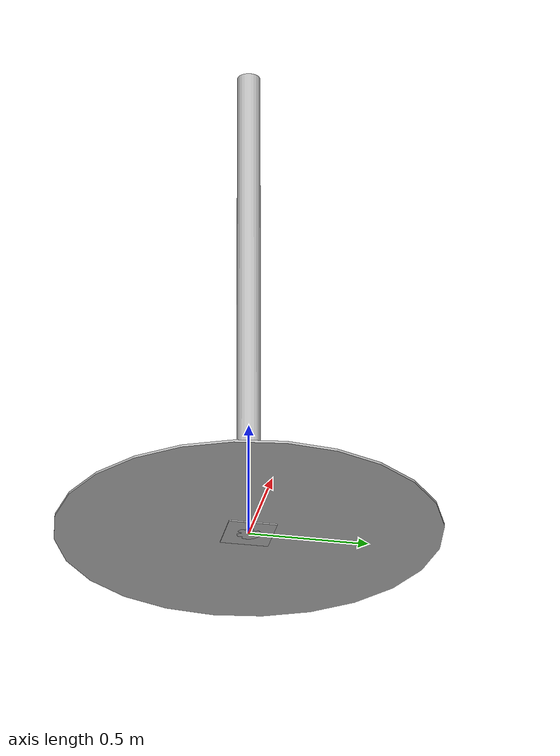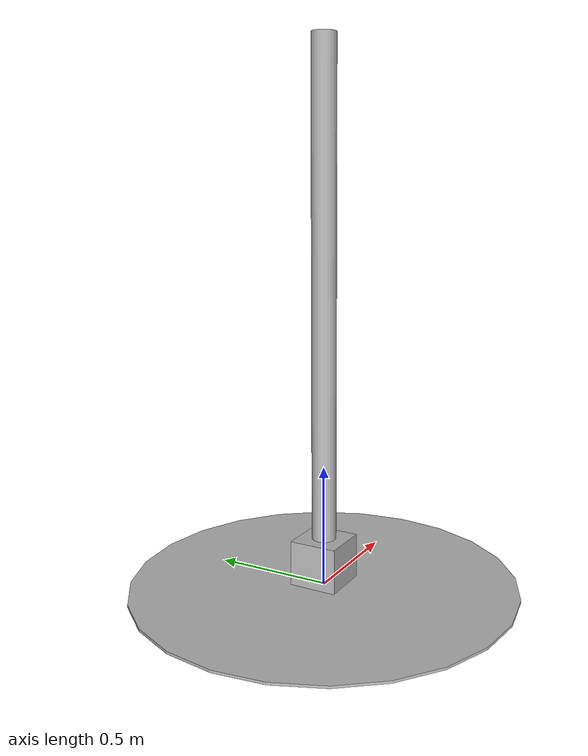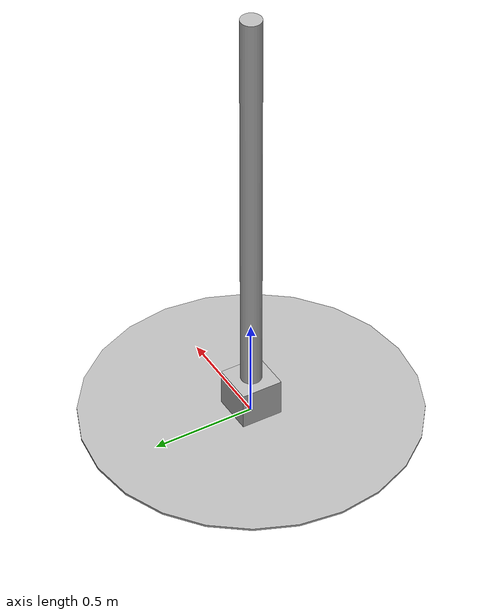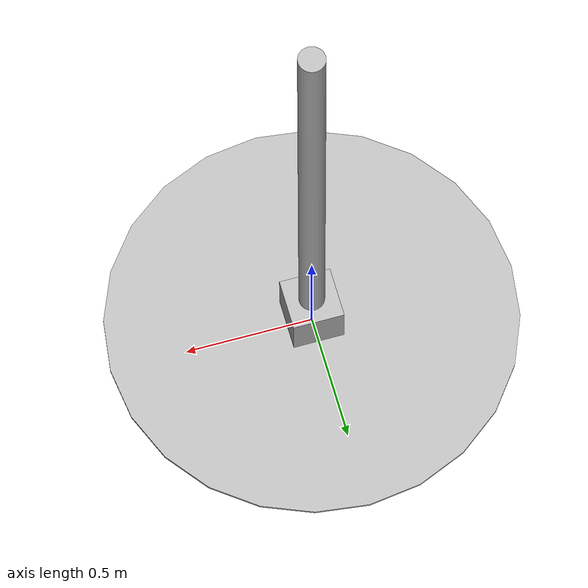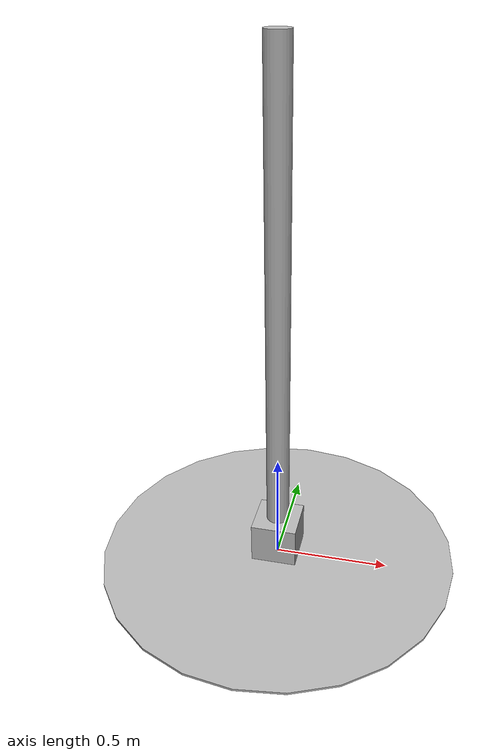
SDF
<?xml version="1.0" ?>
<sdf version="1.5">
  <model name="mass_on_pole">

    <link name="base">
      <inertial>
        <mass>100</mass>
      </inertial>
      <visual name="vis_base">
        <pose>0 0 0.01 0 0 0</pose>
        <geometry>
          <cylinder>
            <radius>0.8</radius>
            <length>0.01</length>
          </cylinder>
        </geometry>
      </visual>
      <collision name="col_base">
        <pose>0 0 0.01 0 0 0</pose>
        <geometry>
          <cylinder>
            <radius>0.8</radius>
            <length>0.01</length>
          </cylinder>
        </geometry>
      </collision>
      <visual name="vis_pole">
        <pose>0 0 1.1 0 0 0</pose>
        <geometry>
          <cylinder>
            <radius>0.05</radius>
            <length>2.2</length>
          </cylinder>
        </geometry>
      </visual>
      <collision name="col_pole">
        <pose>0 0 1.1 0 0 0</pose>
        <geometry>
          <cylinder>
            <radius>0.05</radius>
            <length>2.2</length>
          </cylinder>
        </geometry>
      </collision>
    </link>

    <link name="mass">
      <inertial>
        <mass>0.1</mass>
      </inertial>
      <visual name="visual">
        <pose>0 0 0.1 0 0 0</pose>
        <geometry>
          <box>
            <size>0.2 0.2 0.2</size>
          </box>
        </geometry>
      </visual>
      <collision name="collision">
        <pose>0 0 0.1 0 0 0</pose>
        <geometry>
          <box>
            <size>0.2 0.2 0.2</size>
          </box>
        </geometry>
      </collision>
    </link>

    <joint name="joint" type="prismatic">
      <parent>base</parent>
      <child>mass</child>
      <axis>
        <dynamics>
          <damping>0.0</damping>
          <friction>0.1</friction>
        </dynamics>
        <xyz>0 0 1</xyz>
      </axis>
    </joint>
  </model>
</sdf>
